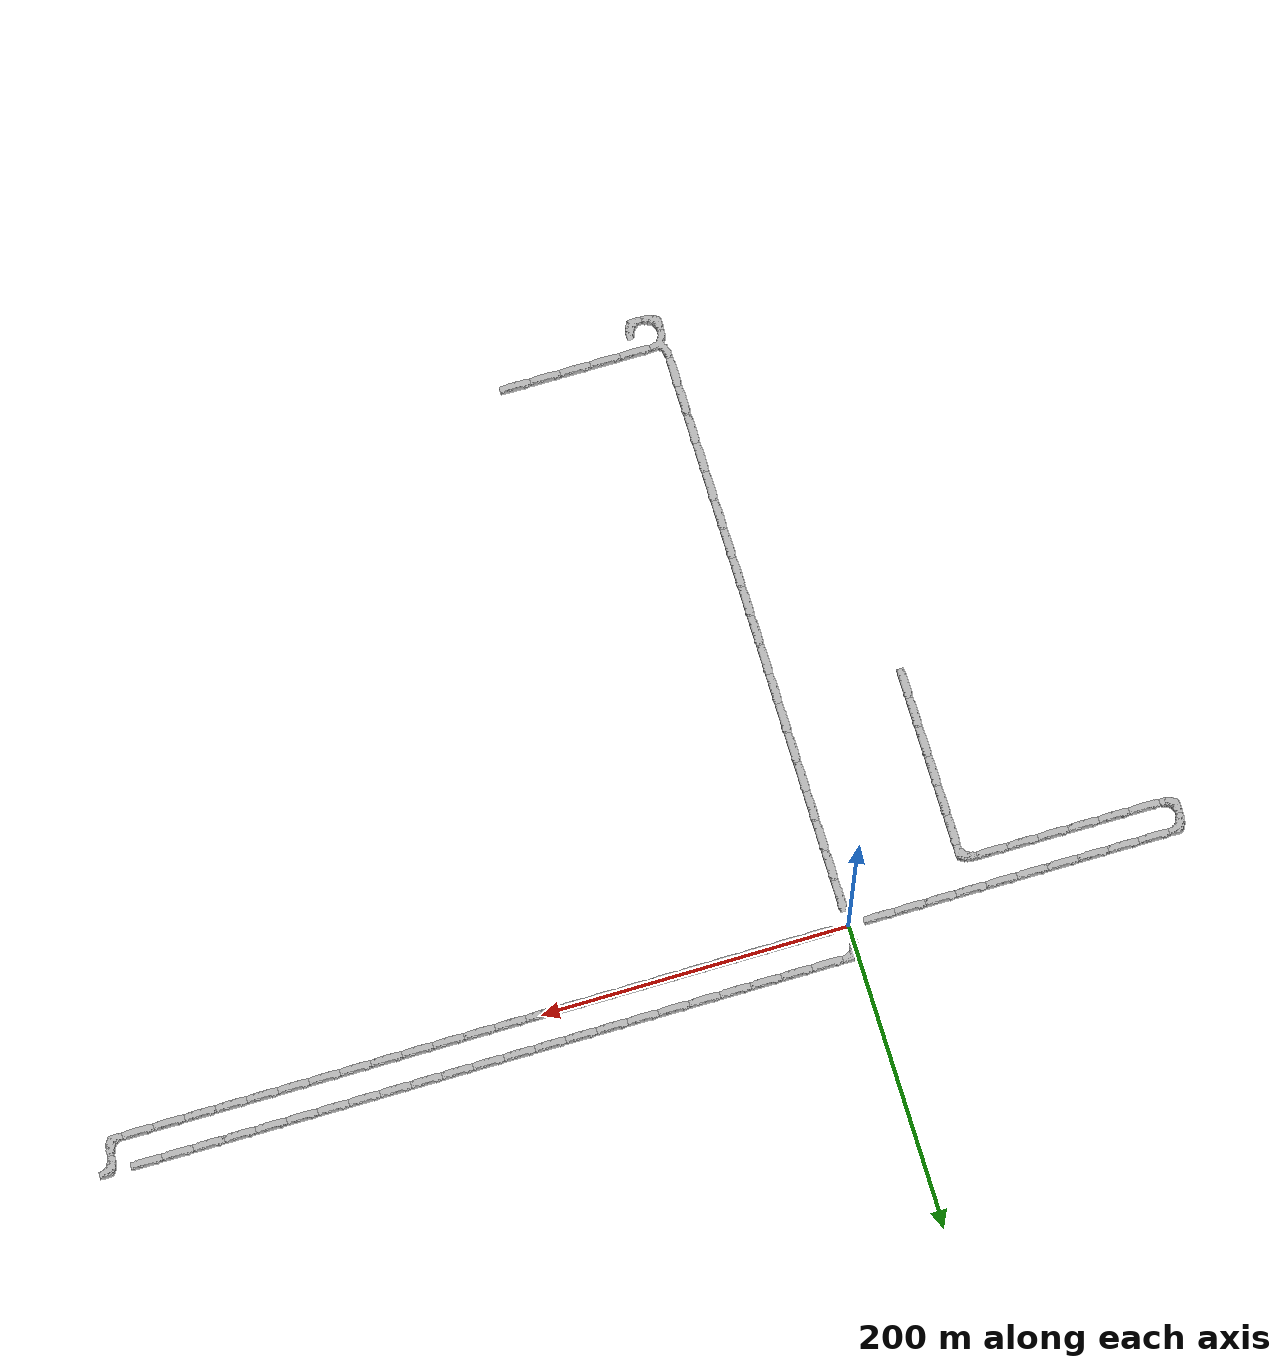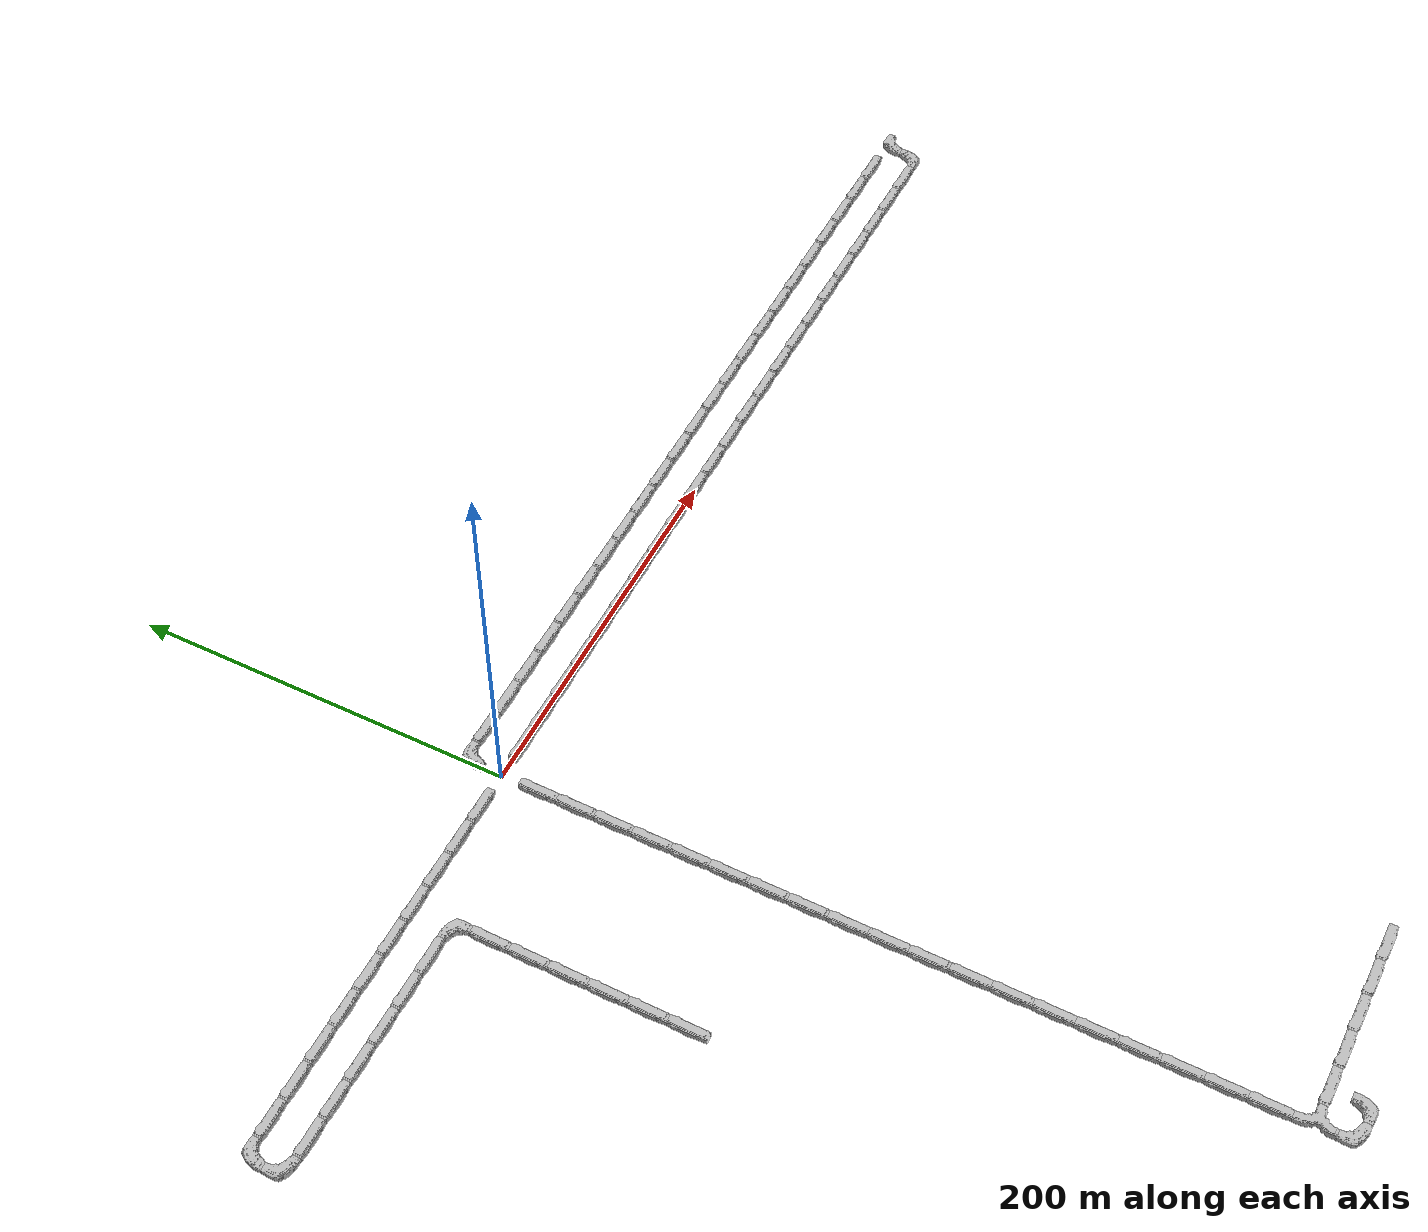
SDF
<sdf version="1.6">
 <world name="cave_2000_4">
  <include>
   <static>true</static>
   <name>cave_1_0</name>
   <pose>20 0 0 0 0 1.5707963267948966</pose>
   <uri>model://cave_straight_20m</uri>
  </include>
  <include>
   <static>true</static>
   <name>cave_2_0</name>
   <pose>40 0 0 0 0 1.5707963267948966</pose>
   <uri>model://cave_straight_20m</uri>
  </include>
  <include>
   <static>true</static>
   <name>cave_3_0</name>
   <pose>60 0 0 0 0 1.5707963267948966</pose>
   <uri>model://cave_straight_20m</uri>
  </include>
  <include>
   <static>true</static>
   <name>cave_4_0</name>
   <pose>80 0 0 0 0 1.5707963267948966</pose>
   <uri>model://cave_straight_20m</uri>
  </include>
  <include>
   <static>true</static>
   <name>cave_5_0</name>
   <pose>100 0 0 0 0 1.5707963267948966</pose>
   <uri>model://cave_straight_20m</uri>
  </include>
  <include>
   <static>true</static>
   <name>cave_6_0</name>
   <pose>120 0 0 0 0 1.5707963267948966</pose>
   <uri>model://cave_straight_20m</uri>
  </include>
  <include>
   <static>true</static>
   <name>cave_7_0</name>
   <pose>140 0 0 0 0 1.5707963267948966</pose>
   <uri>model://cave_straight_20m</uri>
  </include>
  <include>
   <static>true</static>
   <name>cave_8_0</name>
   <pose>160 0 0 0 0 1.5707963267948966</pose>
   <uri>model://cave_straight_20m</uri>
  </include>
  <include>
   <static>true</static>
   <name>cave_9_0</name>
   <pose>180 0 0 0 0 1.5707963267948966</pose>
   <uri>model://cave_straight_20m</uri>
  </include>
  <include>
   <static>true</static>
   <name>cave_10_0</name>
   <pose>200 0 0 0 0 1.5707963267948966</pose>
   <uri>model://cave_straight_20m</uri>
  </include>
  <include>
   <static>true</static>
   <name>cave_11_0</name>
   <pose>220 0 0 0 0 1.5707963267948966</pose>
   <uri>model://cave_straight_20m</uri>
  </include>
  <include>
   <static>true</static>
   <name>cave_12_0</name>
   <pose>240 0 0 0 0 1.5707963267948966</pose>
   <uri>model://cave_straight_20m</uri>
  </include>
  <include>
   <static>true</static>
   <name>cave_13_0</name>
   <pose>260 0 0 0 0 1.5707963267948966</pose>
   <uri>model://cave_straight_20m</uri>
  </include>
  <include>
   <static>true</static>
   <name>cave_14_0</name>
   <pose>280 0 0 0 0 1.5707963267948966</pose>
   <uri>model://cave_straight_20m</uri>
  </include>
  <include>
   <static>true</static>
   <name>cave_15_0</name>
   <pose>300 0 0 0 0 1.5707963267948966</pose>
   <uri>model://cave_straight_20m</uri>
  </include>
  <include>
   <static>true</static>
   <name>cave_16_0</name>
   <pose>320 0 0 0 0 1.5707963267948966</pose>
   <uri>model://cave_straight_20m</uri>
  </include>
  <include>
   <static>true</static>
   <name>cave_17_0</name>
   <pose>340 0 0 0 0 1.5707963267948966</pose>
   <uri>model://cave_straight_20m</uri>
  </include>
  <include>
   <static>true</static>
   <name>cave_18_0</name>
   <pose>360 0 0 0 0 1.5707963267948966</pose>
   <uri>model://cave_straight_20m</uri>
  </include>
  <include>
   <static>true</static>
   <name>cave_19_0</name>
   <pose>380 0 0 0 0 1.5707963267948966</pose>
   <uri>model://cave_straight_20m</uri>
  </include>
  <include>
   <static>true</static>
   <name>cave_20_0</name>
   <pose>400 0 0 0 0 1.5707963267948966</pose>
   <uri>model://cave_straight_20m</uri>
  </include>
  <include>
   <static>true</static>
   <name>cave_21_0</name>
   <pose>420 0 0 0 0 1.5707963267948966</pose>
   <uri>model://cave_straight_20m</uri>
  </include>
  <include>
   <static>true</static>
   <name>cave_22_0</name>
   <pose>440 0 0 0 0 1.5707963267948966</pose>
   <uri>model://cave_straight_20m</uri>
  </include>
  <include>
   <static>true</static>
   <name>cave_23_0</name>
   <pose>460 0 0 0 0 1.5707963267948966</pose>
   <uri>model://cave_straight_20m</uri>
  </include>
  <include>
   <static>true</static>
   <name>cave_24_0</name>
   <pose>480 0 0 0 0 1.5707963267948966</pose>
   <uri>model://cave_L_20m</uri>
  </include>
  <include>
   <static>true</static>
   <name>cave_24_1</name>
   <pose>480 20 0 0 0 -1.5707963267948966</pose>
   <uri>model://cave_L_20m</uri>
  </include>
  <include>
   <static>true</static>
   <name>cave_0_-1</name>
   <pose>0 -20 0 0 0 0.0</pose>
   <uri>model://cave_straight_20m</uri>
  </include>
  <include>
   <static>true</static>
   <name>cave_0_-2</name>
   <pose>0 -40 0 0 0 0.0</pose>
   <uri>model://cave_straight_20m</uri>
  </include>
  <include>
   <static>true</static>
   <name>cave_0_-3</name>
   <pose>0 -60 0 0 0 0.0</pose>
   <uri>model://cave_straight_20m</uri>
  </include>
  <include>
   <static>true</static>
   <name>cave_0_-4</name>
   <pose>0 -80 0 0 0 0.0</pose>
   <uri>model://cave_straight_20m</uri>
  </include>
  <include>
   <static>true</static>
   <name>cave_0_-5</name>
   <pose>0 -100 0 0 0 0.0</pose>
   <uri>model://cave_straight_20m</uri>
  </include>
  <include>
   <static>true</static>
   <name>cave_0_-6</name>
   <pose>0 -120 0 0 0 0.0</pose>
   <uri>model://cave_straight_20m</uri>
  </include>
  <include>
   <static>true</static>
   <name>cave_0_-7</name>
   <pose>0 -140 0 0 0 0.0</pose>
   <uri>model://cave_straight_20m</uri>
  </include>
  <include>
   <static>true</static>
   <name>cave_0_-8</name>
   <pose>0 -160 0 0 0 0.0</pose>
   <uri>model://cave_straight_20m</uri>
  </include>
  <include>
   <static>true</static>
   <name>cave_0_-9</name>
   <pose>0 -180 0 0 0 0.0</pose>
   <uri>model://cave_straight_20m</uri>
  </include>
  <include>
   <static>true</static>
   <name>cave_0_-10</name>
   <pose>0 -200 0 0 0 0.0</pose>
   <uri>model://cave_straight_20m</uri>
  </include>
  <include>
   <static>true</static>
   <name>cave_0_-11</name>
   <pose>0 -220 0 0 0 0.0</pose>
   <uri>model://cave_straight_20m</uri>
  </include>
  <include>
   <static>true</static>
   <name>cave_0_-12</name>
   <pose>0 -240 0 0 0 0.0</pose>
   <uri>model://cave_straight_20m</uri>
  </include>
  <include>
   <static>true</static>
   <name>cave_0_-13</name>
   <pose>0 -260 0 0 0 0.0</pose>
   <uri>model://cave_straight_20m</uri>
  </include>
  <include>
   <static>true</static>
   <name>cave_0_-14</name>
   <pose>0 -280 0 0 0 0.0</pose>
   <uri>model://cave_straight_20m</uri>
  </include>
  <include>
   <static>true</static>
   <name>cave_0_-15</name>
   <pose>0 -300 0 0 0 0.0</pose>
   <uri>model://cave_straight_20m</uri>
  </include>
  <include>
   <static>true</static>
   <name>cave_0_-16</name>
   <pose>0 -320 0 0 0 0.0</pose>
   <uri>model://cave_straight_20m</uri>
  </include>
  <include>
   <static>true</static>
   <name>cave_0_-17</name>
   <pose>0 -340 0 0 0 0.0</pose>
   <uri>model://cave_straight_20m</uri>
  </include>
  <include>
   <static>true</static>
   <name>cave_0_-18</name>
   <pose>0 -360 0 0 0 0.0</pose>
   <uri>model://cave_straight_20m</uri>
  </include>
  <include>
   <static>true</static>
   <name>cave_0_-19</name>
   <pose>0 -380 0 0 0 0.0</pose>
   <uri>model://cave_straight_20m</uri>
  </include>
  <include>
   <static>true</static>
   <name>cave_0_-20</name>
   <pose>0 -400 0 0 0 -1.5707963267948966</pose>
   <uri>model://cave_3way_20m</uri>
  </include>
  <include>
   <static>true</static>
   <name>cave_1_-20</name>
   <pose>20 -400 0 0 0 1.5707963267948966</pose>
   <uri>model://cave_straight_20m</uri>
  </include>
  <include>
   <static>true</static>
   <name>cave_2_-20</name>
   <pose>40 -400 0 0 0 1.5707963267948966</pose>
   <uri>model://cave_straight_20m</uri>
  </include>
  <include>
   <static>true</static>
   <name>cave_3_-20</name>
   <pose>60 -400 0 0 0 1.5707963267948966</pose>
   <uri>model://cave_straight_20m</uri>
  </include>
  <include>
   <static>true</static>
   <name>cave_4_-20</name>
   <pose>80 -400 0 0 0 1.5707963267948966</pose>
   <uri>model://cave_straight_20m</uri>
  </include>
  <include>
   <static>true</static>
   <name>cave_5_-20</name>
   <pose>100 -400 0 0 0 1.5707963267948966</pose>
   <uri>model://cave_straight_20m</uri>
  </include>
  <include>
   <static>true</static>
   <name>cave_0_-21</name>
   <pose>0 -420 0 0 0 0.0</pose>
   <uri>model://cave_L_20m</uri>
  </include>
  <include>
   <static>true</static>
   <name>cave_1_-21</name>
   <pose>20 -420 0 0 0 1.5707963267948966</pose>
   <uri>model://cave_L_20m</uri>
  </include>
  <include>
   <static>true</static>
   <name>cave_-1_0</name>
   <pose>-20 0 0 0 0 1.5707963267948966</pose>
   <uri>model://cave_straight_20m</uri>
  </include>
  <include>
   <static>true</static>
   <name>cave_-2_0</name>
   <pose>-40 0 0 0 0 1.5707963267948966</pose>
   <uri>model://cave_straight_20m</uri>
  </include>
  <include>
   <static>true</static>
   <name>cave_-3_0</name>
   <pose>-60 0 0 0 0 1.5707963267948966</pose>
   <uri>model://cave_straight_20m</uri>
  </include>
  <include>
   <static>true</static>
   <name>cave_-4_0</name>
   <pose>-80 0 0 0 0 1.5707963267948966</pose>
   <uri>model://cave_straight_20m</uri>
  </include>
  <include>
   <static>true</static>
   <name>cave_-5_0</name>
   <pose>-100 0 0 0 0 1.5707963267948966</pose>
   <uri>model://cave_straight_20m</uri>
  </include>
  <include>
   <static>true</static>
   <name>cave_-6_0</name>
   <pose>-120 0 0 0 0 1.5707963267948966</pose>
   <uri>model://cave_straight_20m</uri>
  </include>
  <include>
   <static>true</static>
   <name>cave_-7_0</name>
   <pose>-140 0 0 0 0 1.5707963267948966</pose>
   <uri>model://cave_straight_20m</uri>
  </include>
  <include>
   <static>true</static>
   <name>cave_-8_0</name>
   <pose>-160 0 0 0 0 1.5707963267948966</pose>
   <uri>model://cave_straight_20m</uri>
  </include>
  <include>
   <static>true</static>
   <name>cave_-9_0</name>
   <pose>-180 0 0 0 0 1.5707963267948966</pose>
   <uri>model://cave_straight_20m</uri>
  </include>
  <include>
   <static>true</static>
   <name>cave_-10_0</name>
   <pose>-200 0 0 0 0 1.5707963267948966</pose>
   <uri>model://cave_straight_20m</uri>
  </include>
  <include>
   <static>true</static>
   <name>cave_-11_0</name>
   <pose>-220 0 0 0 0 -1.5707963267948966</pose>
   <uri>model://cave_L_20m</uri>
  </include>
  <include>
   <static>true</static>
   <name>cave_-11_-1</name>
   <pose>-220 -20 0 0 0 0.0</pose>
   <uri>model://cave_L_20m</uri>
  </include>
  <include>
   <static>true</static>
   <name>cave_-10_-1</name>
   <pose>-200 -20 0 0 0 1.5707963267948966</pose>
   <uri>model://cave_straight_20m</uri>
  </include>
  <include>
   <static>true</static>
   <name>cave_-9_-1</name>
   <pose>-180 -20 0 0 0 1.5707963267948966</pose>
   <uri>model://cave_straight_20m</uri>
  </include>
  <include>
   <static>true</static>
   <name>cave_-8_-1</name>
   <pose>-160 -20 0 0 0 1.5707963267948966</pose>
   <uri>model://cave_straight_20m</uri>
  </include>
  <include>
   <static>true</static>
   <name>cave_-7_-1</name>
   <pose>-140 -20 0 0 0 1.5707963267948966</pose>
   <uri>model://cave_straight_20m</uri>
  </include>
  <include>
   <static>true</static>
   <name>cave_-6_-1</name>
   <pose>-120 -20 0 0 0 1.5707963267948966</pose>
   <uri>model://cave_straight_20m</uri>
  </include>
  <include>
   <static>true</static>
   <name>cave_-5_-1</name>
   <pose>-100 -20 0 0 0 1.5707963267948966</pose>
   <uri>model://cave_straight_20m</uri>
  </include>
  <include>
   <static>true</static>
   <name>cave_-4_-1</name>
   <pose>-80 -20 0 0 0 3.141592653589793</pose>
   <uri>model://cave_L_20m</uri>
  </include>
  <include>
   <static>true</static>
   <name>cave_-4_-2</name>
   <pose>-80 -40 0 0 0 0.0</pose>
   <uri>model://cave_straight_20m</uri>
  </include>
  <include>
   <static>true</static>
   <name>cave_-4_-3</name>
   <pose>-80 -60 0 0 0 0.0</pose>
   <uri>model://cave_straight_20m</uri>
  </include>
  <include>
   <static>true</static>
   <name>cave_-4_-4</name>
   <pose>-80 -80 0 0 0 0.0</pose>
   <uri>model://cave_straight_20m</uri>
  </include>
  <include>
   <static>true</static>
   <name>cave_-4_-5</name>
   <pose>-80 -100 0 0 0 0.0</pose>
   <uri>model://cave_straight_20m</uri>
  </include>
  <include>
   <static>true</static>
   <name>cave_-4_-6</name>
   <pose>-80 -120 0 0 0 0.0</pose>
   <uri>model://cave_straight_20m</uri>
  </include>
  <include>
   <static>true</static>
   <name>cave_-4_-7</name>
   <pose>-80 -140 0 0 0 0.0</pose>
   <uri>model://cave_straight_20m</uri>
  </include>
  <include>
   <static>true</static>
   <name>cave_0_1</name>
   <pose>0 20 0 0 0 -1.5707963267948966</pose>
   <uri>model://cave_L_20m</uri>
  </include>
  <include>
   <static>true</static>
   <name>cave_1_1</name>
   <pose>20 20 0 0 0 1.5707963267948966</pose>
   <uri>model://cave_straight_20m</uri>
  </include>
  <include>
   <static>true</static>
   <name>cave_2_1</name>
   <pose>40 20 0 0 0 1.5707963267948966</pose>
   <uri>model://cave_straight_20m</uri>
  </include>
  <include>
   <static>true</static>
   <name>cave_3_1</name>
   <pose>60 20 0 0 0 1.5707963267948966</pose>
   <uri>model://cave_straight_20m</uri>
  </include>
  <include>
   <static>true</static>
   <name>cave_4_1</name>
   <pose>80 20 0 0 0 1.5707963267948966</pose>
   <uri>model://cave_straight_20m</uri>
  </include>
  <include>
   <static>true</static>
   <name>cave_5_1</name>
   <pose>100 20 0 0 0 1.5707963267948966</pose>
   <uri>model://cave_straight_20m</uri>
  </include>
  <include>
   <static>true</static>
   <name>cave_6_1</name>
   <pose>120 20 0 0 0 1.5707963267948966</pose>
   <uri>model://cave_straight_20m</uri>
  </include>
  <include>
   <static>true</static>
   <name>cave_7_1</name>
   <pose>140 20 0 0 0 1.5707963267948966</pose>
   <uri>model://cave_straight_20m</uri>
  </include>
  <include>
   <static>true</static>
   <name>cave_8_1</name>
   <pose>160 20 0 0 0 1.5707963267948966</pose>
   <uri>model://cave_straight_20m</uri>
  </include>
  <include>
   <static>true</static>
   <name>cave_9_1</name>
   <pose>180 20 0 0 0 1.5707963267948966</pose>
   <uri>model://cave_straight_20m</uri>
  </include>
  <include>
   <static>true</static>
   <name>cave_10_1</name>
   <pose>200 20 0 0 0 1.5707963267948966</pose>
   <uri>model://cave_straight_20m</uri>
  </include>
  <include>
   <static>true</static>
   <name>cave_11_1</name>
   <pose>220 20 0 0 0 1.5707963267948966</pose>
   <uri>model://cave_straight_20m</uri>
  </include>
  <include>
   <static>true</static>
   <name>cave_12_1</name>
   <pose>240 20 0 0 0 1.5707963267948966</pose>
   <uri>model://cave_straight_20m</uri>
  </include>
  <include>
   <static>true</static>
   <name>cave_13_1</name>
   <pose>260 20 0 0 0 1.5707963267948966</pose>
   <uri>model://cave_straight_20m</uri>
  </include>
  <include>
   <static>true</static>
   <name>cave_14_1</name>
   <pose>280 20 0 0 0 1.5707963267948966</pose>
   <uri>model://cave_straight_20m</uri>
  </include>
  <include>
   <static>true</static>
   <name>cave_15_1</name>
   <pose>300 20 0 0 0 1.5707963267948966</pose>
   <uri>model://cave_straight_20m</uri>
  </include>
  <include>
   <static>true</static>
   <name>cave_16_1</name>
   <pose>320 20 0 0 0 1.5707963267948966</pose>
   <uri>model://cave_straight_20m</uri>
  </include>
  <include>
   <static>true</static>
   <name>cave_17_1</name>
   <pose>340 20 0 0 0 1.5707963267948966</pose>
   <uri>model://cave_straight_20m</uri>
  </include>
  <include>
   <static>true</static>
   <name>cave_18_1</name>
   <pose>360 20 0 0 0 1.5707963267948966</pose>
   <uri>model://cave_straight_20m</uri>
  </include>
  <include>
   <static>true</static>
   <name>cave_19_1</name>
   <pose>380 20 0 0 0 1.5707963267948966</pose>
   <uri>model://cave_straight_20m</uri>
  </include>
  <include>
   <static>true</static>
   <name>cave_20_1</name>
   <pose>400 20 0 0 0 1.5707963267948966</pose>
   <uri>model://cave_straight_20m</uri>
  </include>
  <include>
   <static>true</static>
   <name>cave_21_1</name>
   <pose>420 20 0 0 0 1.5707963267948966</pose>
   <uri>model://cave_straight_20m</uri>
  </include>
  <include>
   <static>true</static>
   <name>cave_22_1</name>
   <pose>440 20 0 0 0 1.5707963267948966</pose>
   <uri>model://cave_straight_20m</uri>
  </include>
  <include>
   <static>true</static>
   <name>cave_23_1</name>
   <pose>460 20 0 0 0 1.5707963267948966</pose>
   <uri>model://cave_straight_20m</uri>
  </include>
 </world>
</sdf>

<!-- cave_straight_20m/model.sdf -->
<sdf version="1.6">
  <model name="cave_straight_20m">
    <static>true</static>
    <link name="base">
      <pose>0 0 0 0 0 0</pose>
      <collision name="base_collision">
        <pose>0 0 0 0 0 0</pose>
        <geometry>
          <mesh>
            <uri>model://cave_straight_20m/meshes/cave_straight_20m.dae</uri>
          </mesh>
        </geometry>
        <surface>
          <contact>
             <collide_bitmask>0xffff</collide_bitmask>
          </contact>
          <friction>
            <ode>
              <mu>100</mu>
              <mu2>50</mu2>
            </ode>
          </friction>
        </surface>
      </collision>
      <visual name="base_visual">
        <pose>0 0 0 0 0 0</pose>
        <cast_shadows>false</cast_shadows>
        <geometry>
          <mesh>
            <uri>model://cave_straight_20m/meshes/cave_straight_20m.dae</uri>
          </mesh>
        </geometry>
      </visual>
    </link>
  </model>
</sdf>

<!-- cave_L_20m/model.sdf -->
<sdf version="1.6">
  <model name="cave_L_20m">
    <static>true</static>
    <link name="base">
      <pose>0 0 0 0 0 0</pose>
      <collision name="base_collision">
        <pose>0 0 0 0 0 0</pose>
        <geometry>
          <mesh>
            <uri>model://cave_L_20m/meshes/cave_L_20m.dae</uri>
          </mesh>
        </geometry>
        <surface>
          <contact>
             <collide_bitmask>0xffff</collide_bitmask>
          </contact>
          <friction>
            <ode>
              <mu>100</mu>
              <mu2>50</mu2>
            </ode>
          </friction>
        </surface>
      </collision>
      <visual name="base_visual">
        <pose>0 0 0 0 0 0</pose>
        <cast_shadows>false</cast_shadows>
        <geometry>
          <mesh>
            <uri>model://cave_L_20m/meshes/cave_L_20m.dae</uri>
          </mesh>
        </geometry>
      </visual>
    </link>
  </model>
</sdf>

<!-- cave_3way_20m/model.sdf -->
<sdf version="1.6">
  <model name="cave_3way_20m">
    <static>true</static>
    <link name="base">
      <pose>0 0 0 0 0 0</pose>
      <collision name="base_collision">
        <pose>0 0 0 0 0 0</pose>
        <geometry>
          <mesh>
            <uri>model://cave_3way_20m/meshes/cave_3way_20m.dae</uri>
          </mesh>
        </geometry>
        <surface>
          <contact>
             <collide_bitmask>0xffff</collide_bitmask>
          </contact>
          <friction>
            <ode>
              <mu>100</mu>
              <mu2>50</mu2>
            </ode>
          </friction>
        </surface>
      </collision>
      <visual name="base_visual">
        <cast_shadows>false</cast_shadows>
        <pose>0 0 0 0 0 0</pose>
        <geometry>
          <mesh>
            <uri>model://cave_3way_20m/meshes/cave_3way_20m.dae</uri>
          </mesh>
        </geometry>
      </visual>
    </link>
  </model>
</sdf>
